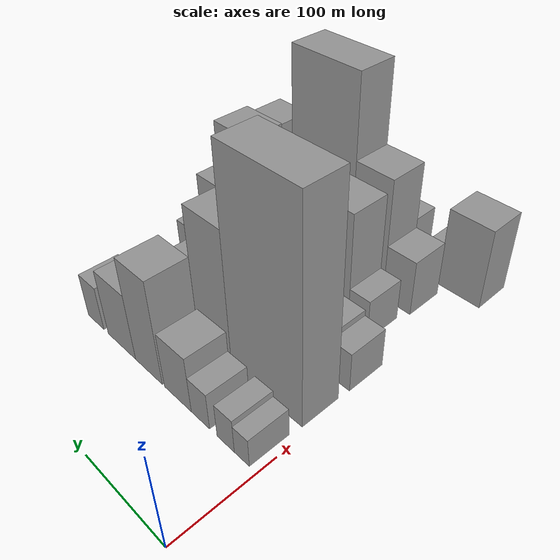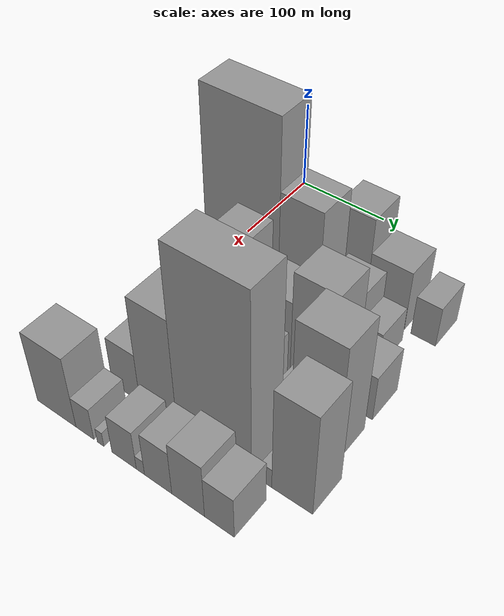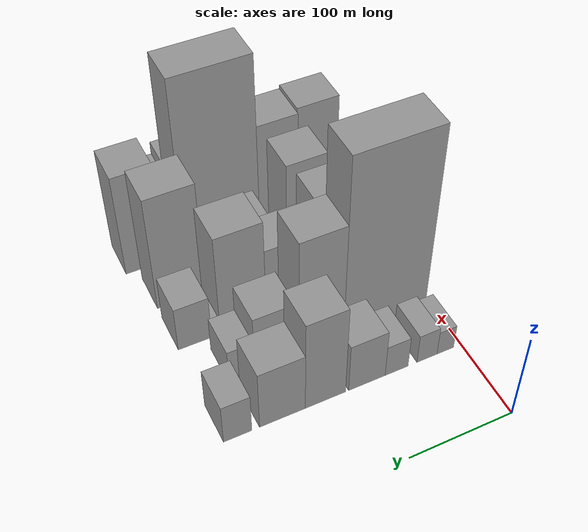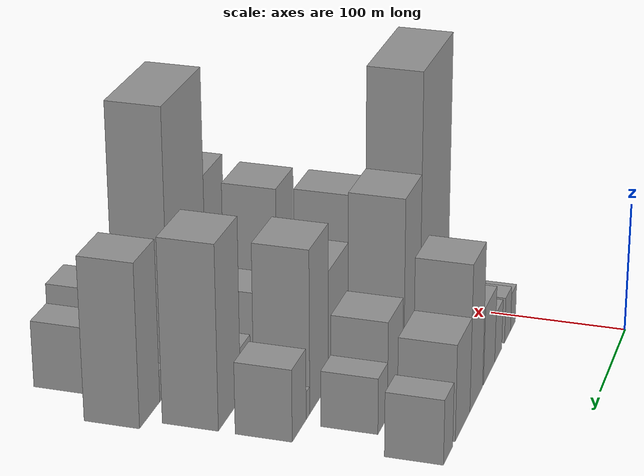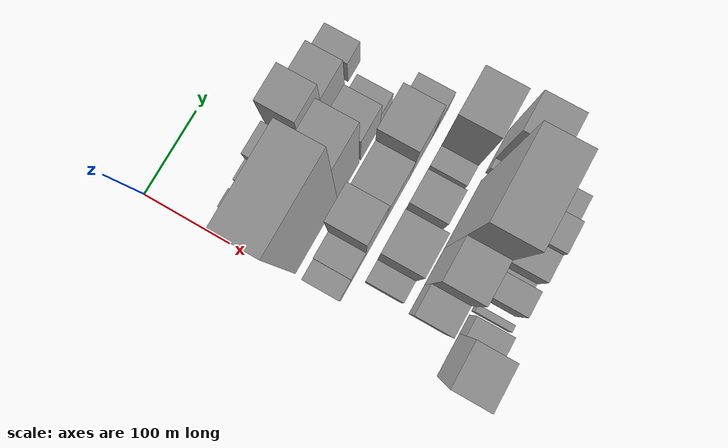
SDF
<sdf version="1.6">
 <world name="default">
  <model name="building_27">
   <static>1</static>
   <pose>100.0000 16.5725 0 0.000000 0.000000 0.000000</pose>
   <link name="link">
    <pose>0 0 15.00 0 0 0</pose>
    <collision name="collision"><geometry><box><size>40.0000 17.0081 30.0000</size></box></geometry></collision>
    <visual name="visual">
     <cast_shadows>0</cast_shadows>
     <geometry><box><size>40.0000 17.0081 30.0000</size></box></geometry>
     <material>
      <script>
       <uri>model://grey_wall/materials/scripts</uri>
       <uri>model://grey_wall/materials/textures</uri>
       <name>vrc/grey_wall</name>
      </script>
     </material>
    </visual>
   </link>
  </model>
  <model name="building_28">
   <static>1</static>
   <pose>100.0000 35.2071 0 0.000000 0.000000 0.000000</pose>
   <link name="link">
    <pose>0 0 18.00 0 0 0</pose>
    <collision name="collision"><geometry><box><size>40.0000 20.2609 36.0000</size></box></geometry></collision>
    <visual name="visual">
     <cast_shadows>0</cast_shadows>
     <geometry><box><size>40.0000 20.2609 36.0000</size></box></geometry>
     <material>
      <script>
       <uri>model://grey_wall/materials/scripts</uri>
       <uri>model://grey_wall/materials/textures</uri>
       <name>vrc/grey_wall</name>
      </script>
     </material>
    </visual>
   </link>
  </model>
  <model name="building_29">
   <static>1</static>
   <pose>100.0000 65.7200 0 0.000000 0.000000 0.000000</pose>
   <link name="link">
    <pose>0 0 19.50 0 0 0</pose>
    <collision name="collision"><geometry><box><size>40.0000 22.7649 39.0000</size></box></geometry></collision>
    <visual name="visual">
     <cast_shadows>0</cast_shadows>
     <geometry><box><size>40.0000 22.7649 39.0000</size></box></geometry>
     <material>
      <script>
       <uri>model://grey_wall/materials/scripts</uri>
       <uri>model://grey_wall/materials/textures</uri>
       <name>vrc/grey_wall</name>
      </script>
     </material>
    </visual>
   </link>
  </model>
  <model name="building_30">
   <static>1</static>
   <pose>100.0000 94.8843 0 0.000000 0.000000 0.000000</pose>
   <link name="link">
    <pose>0 0 30.00 0 0 0</pose>
    <collision name="collision"><geometry><box><size>40.0000 35.5636 60.0000</size></box></geometry></collision>
    <visual name="visual">
     <cast_shadows>0</cast_shadows>
     <geometry><box><size>40.0000 35.5636 60.0000</size></box></geometry>
     <material>
      <script>
       <uri>model://grey_wall/materials/scripts</uri>
       <uri>model://grey_wall/materials/textures</uri>
       <name>vrc/grey_wall</name>
      </script>
     </material>
    </visual>
   </link>
  </model>
  <model name="building_31">
   <static>1</static>
   <pose>100.0000 134.7887 0 0.000000 0.000000 0.000000</pose>
   <link name="link">
    <pose>0 0 55.50 0 0 0</pose>
    <collision name="collision"><geometry><box><size>40.0000 38.2454 111.0000</size></box></geometry></collision>
    <visual name="visual">
     <cast_shadows>0</cast_shadows>
     <geometry><box><size>40.0000 38.2454 111.0000</size></box></geometry>
     <material>
      <script>
       <uri>model://grey_wall/materials/scripts</uri>
       <uri>model://grey_wall/materials/textures</uri>
       <name>vrc/grey_wall</name>
      </script>
     </material>
    </visual>
   </link>
  </model>
  <model name="building_32">
   <static>1</static>
   <pose>100.0000 175.0350 0 0.000000 0.000000 0.000000</pose>
   <link name="link">
    <pose>0 0 36.00 0 0 0</pose>
    <collision name="collision"><geometry><box><size>40.0000 42.2471 72.0000</size></box></geometry></collision>
    <visual name="visual">
     <cast_shadows>0</cast_shadows>
     <geometry><box><size>40.0000 42.2471 72.0000</size></box></geometry>
     <material>
      <script>
       <uri>model://grey_wall/materials/scripts</uri>
       <uri>model://grey_wall/materials/textures</uri>
       <name>vrc/grey_wall</name>
      </script>
     </material>
    </visual>
   </link>
  </model>
  <model name="building_33">
   <static>1</static>
   <pose>100.0000 215.9216 0 0.000000 0.000000 0.000000</pose>
   <link name="link">
    <pose>0 0 24.00 0 0 0</pose>
    <collision name="collision"><geometry><box><size>40.0000 25.5261 48.0000</size></box></geometry></collision>
    <visual name="visual">
     <cast_shadows>0</cast_shadows>
     <geometry><box><size>40.0000 25.5261 48.0000</size></box></geometry>
     <material>
      <script>
       <uri>model://grey_wall/materials/scripts</uri>
       <uri>model://grey_wall/materials/textures</uri>
       <name>vrc/grey_wall</name>
      </script>
     </material>
    </visual>
   </link>
  </model>
  <model name="building_79">
   <static>1</static>
   <pose>152.0000 48.2133 0 0.000000 0.000000 0.000000</pose>
   <link name="link">
    <pose>0 0 109.50 0 0 0</pose>
    <collision name="collision"><geometry><box><size>40.0000 84.0893 219.0000</size></box></geometry></collision>
    <visual name="visual">
     <cast_shadows>0</cast_shadows>
     <geometry><box><size>40.0000 84.0893 219.0000</size></box></geometry>
     <material>
      <script>
       <uri>model://grey_wall/materials/scripts</uri>
       <uri>model://grey_wall/materials/textures</uri>
       <name>vrc/grey_wall</name>
      </script>
     </material>
    </visual>
   </link>
  </model>
  <model name="building_80">
   <static>1</static>
   <pose>152.0000 112.3392 0 0.000000 0.000000 0.000000</pose>
   <link name="link">
    <pose>0 0 72.00 0 0 0</pose>
    <collision name="collision"><geometry><box><size>40.0000 44.1624 144.0000</size></box></geometry></collision>
    <visual name="visual">
     <cast_shadows>0</cast_shadows>
     <geometry><box><size>40.0000 44.1624 144.0000</size></box></geometry>
     <material>
      <script>
       <uri>model://grey_wall/materials/scripts</uri>
       <uri>model://grey_wall/materials/textures</uri>
       <name>vrc/grey_wall</name>
      </script>
     </material>
    </visual>
   </link>
  </model>
  <model name="building_81">
   <static>1</static>
   <pose>152.0000 157.1368 0 0.000000 0.000000 0.000000</pose>
   <link name="link">
    <pose>0 0 36.00 0 0 0</pose>
    <collision name="collision"><geometry><box><size>40.0000 39.4327 72.0000</size></box></geometry></collision>
    <visual name="visual">
     <cast_shadows>0</cast_shadows>
     <geometry><box><size>40.0000 39.4327 72.0000</size></box></geometry>
     <material>
      <script>
       <uri>model://grey_wall/materials/scripts</uri>
       <uri>model://grey_wall/materials/textures</uri>
       <name>vrc/grey_wall</name>
      </script>
     </material>
    </visual>
   </link>
  </model>
  <model name="building_82">
   <static>1</static>
   <pose>152.0000 189.0234 0 0.000000 0.000000 0.000000</pose>
   <link name="link">
    <pose>0 0 21.00 0 0 0</pose>
    <collision name="collision"><geometry><box><size>40.0000 24.3405 42.0000</size></box></geometry></collision>
    <visual name="visual">
     <cast_shadows>0</cast_shadows>
     <geometry><box><size>40.0000 24.3405 42.0000</size></box></geometry>
     <material>
      <script>
       <uri>model://grey_wall/materials/scripts</uri>
       <uri>model://grey_wall/materials/textures</uri>
       <name>vrc/grey_wall</name>
      </script>
     </material>
    </visual>
   </link>
  </model>
  <model name="building_128">
   <static>1</static>
   <pose>204.0000 16.0040 0 0.000000 0.000000 0.000000</pose>
   <link name="link">
    <pose>0 0 21.00 0 0 0</pose>
    <collision name="collision"><geometry><box><size>40.0000 22.0167 42.0000</size></box></geometry></collision>
    <visual name="visual">
     <cast_shadows>0</cast_shadows>
     <geometry><box><size>40.0000 22.0167 42.0000</size></box></geometry>
     <material>
      <script>
       <uri>model://grey_wall/materials/scripts</uri>
       <uri>model://grey_wall/materials/textures</uri>
       <name>vrc/grey_wall</name>
      </script>
     </material>
    </visual>
   </link>
  </model>
  <model name="building_129">
   <static>1</static>
   <pose>204.0000 41.0035 0 0.000000 0.000000 0.000000</pose>
   <link name="link">
    <pose>0 0 24.00 0 0 0</pose>
    <collision name="collision"><geometry><box><size>40.0000 27.9822 48.0000</size></box></geometry></collision>
    <visual name="visual">
     <cast_shadows>0</cast_shadows>
     <geometry><box><size>40.0000 27.9822 48.0000</size></box></geometry>
     <material>
      <script>
       <uri>model://grey_wall/materials/scripts</uri>
       <uri>model://grey_wall/materials/textures</uri>
       <name>vrc/grey_wall</name>
      </script>
     </material>
    </visual>
   </link>
  </model>
  <model name="building_130">
   <static>1</static>
   <pose>204.0000 73.4729 0 0.000000 0.000000 0.000000</pose>
   <link name="link">
    <pose>0 0 61.50 0 0 0</pose>
    <collision name="collision"><geometry><box><size>40.0000 36.9567 123.0000</size></box></geometry></collision>
    <visual name="visual">
     <cast_shadows>0</cast_shadows>
     <geometry><box><size>40.0000 36.9567 123.0000</size></box></geometry>
     <material>
      <script>
       <uri>model://grey_wall/materials/scripts</uri>
       <uri>model://grey_wall/materials/textures</uri>
       <name>vrc/grey_wall</name>
      </script>
     </material>
    </visual>
   </link>
  </model>
  <model name="building_131">
   <static>1</static>
   <pose>204.0000 116.9390 0 0.000000 0.000000 0.000000</pose>
   <link name="link">
    <pose>0 0 43.50 0 0 0</pose>
    <collision name="collision"><geometry><box><size>40.0000 49.9755 87.0000</size></box></geometry></collision>
    <visual name="visual">
     <cast_shadows>0</cast_shadows>
     <geometry><box><size>40.0000 49.9755 87.0000</size></box></geometry>
     <material>
      <script>
       <uri>model://grey_wall/materials/scripts</uri>
       <uri>model://grey_wall/materials/textures</uri>
       <name>vrc/grey_wall</name>
      </script>
     </material>
    </visual>
   </link>
  </model>
  <model name="building_132">
   <static>1</static>
   <pose>204.0000 164.4416 0 0.000000 0.000000 0.000000</pose>
   <link name="link">
    <pose>0 0 61.50 0 0 0</pose>
    <collision name="collision"><geometry><box><size>40.0000 45.0297 123.0000</size></box></geometry></collision>
    <visual name="visual">
     <cast_shadows>0</cast_shadows>
     <geometry><box><size>40.0000 45.0297 123.0000</size></box></geometry>
     <material>
      <script>
       <uri>model://grey_wall/materials/scripts</uri>
       <uri>model://grey_wall/materials/textures</uri>
       <name>vrc/grey_wall</name>
      </script>
     </material>
    </visual>
   </link>
  </model>
  <model name="building_133">
   <static>1</static>
   <pose>204.0000 191.1578 0 0.000000 0.000000 0.000000</pose>
   <link name="link">
    <pose>0 0 10.50 0 0 0</pose>
    <collision name="collision"><geometry><box><size>40.0000 8.4028 21.0000</size></box></geometry></collision>
    <visual name="visual">
     <cast_shadows>0</cast_shadows>
     <geometry><box><size>40.0000 8.4028 21.0000</size></box></geometry>
     <material>
      <script>
       <uri>model://grey_wall/materials/scripts</uri>
       <uri>model://grey_wall/materials/textures</uri>
       <name>vrc/grey_wall</name>
      </script>
     </material>
    </visual>
   </link>
  </model>
  <model name="building_134">
   <static>1</static>
   <pose>204.0000 211.2777 0 0.000000 0.000000 0.000000</pose>
   <link name="link">
    <pose>0 0 27.00 0 0 0</pose>
    <collision name="collision"><geometry><box><size>40.0000 31.8368 54.0000</size></box></geometry></collision>
    <visual name="visual">
     <cast_shadows>0</cast_shadows>
     <geometry><box><size>40.0000 31.8368 54.0000</size></box></geometry>
     <material>
      <script>
       <uri>model://grey_wall/materials/scripts</uri>
       <uri>model://grey_wall/materials/textures</uri>
       <name>vrc/grey_wall</name>
      </script>
     </material>
    </visual>
   </link>
  </model>
  <model name="building_182">
   <static>1</static>
   <pose>256.0000 43.7344 0 0.000000 0.000000 0.000000</pose>
   <link name="link">
    <pose>0 0 22.50 0 0 0</pose>
    <collision name="collision"><geometry><box><size>40.0000 22.7232 45.0000</size></box></geometry></collision>
    <visual name="visual">
     <cast_shadows>0</cast_shadows>
     <geometry><box><size>40.0000 22.7232 45.0000</size></box></geometry>
     <material>
      <script>
       <uri>model://grey_wall/materials/scripts</uri>
       <uri>model://grey_wall/materials/textures</uri>
       <name>vrc/grey_wall</name>
      </script>
     </material>
    </visual>
   </link>
  </model>
  <model name="building_183">
   <static>1</static>
   <pose>256.0000 75.5555 0 0.000000 0.000000 0.000000</pose>
   <link name="link">
    <pose>0 0 61.50 0 0 0</pose>
    <collision name="collision"><geometry><box><size>40.0000 40.9190 123.0000</size></box></geometry></collision>
    <visual name="visual">
     <cast_shadows>0</cast_shadows>
     <geometry><box><size>40.0000 40.9190 123.0000</size></box></geometry>
     <material>
      <script>
       <uri>model://grey_wall/materials/scripts</uri>
       <uri>model://grey_wall/materials/textures</uri>
       <name>vrc/grey_wall</name>
      </script>
     </material>
    </visual>
   </link>
  </model>
  <model name="building_184">
   <static>1</static>
   <pose>256.0000 100.3006 0 0.000000 0.000000 0.000000</pose>
   <link name="link">
    <pose>0 0 9.00 0 0 0</pose>
    <collision name="collision"><geometry><box><size>40.0000 8.5711 18.0000</size></box></geometry></collision>
    <visual name="visual">
     <cast_shadows>0</cast_shadows>
     <geometry><box><size>40.0000 8.5711 18.0000</size></box></geometry>
     <material>
      <script>
       <uri>model://grey_wall/materials/scripts</uri>
       <uri>model://grey_wall/materials/textures</uri>
       <name>vrc/grey_wall</name>
      </script>
     </material>
    </visual>
   </link>
  </model>
  <model name="building_185">
   <static>1</static>
   <pose>256.0000 108.2056 0 0.000000 0.000000 0.000000</pose>
   <link name="link">
    <pose>0 0 7.50 0 0 0</pose>
    <collision name="collision"><geometry><box><size>40.0000 7.2390 15.0000</size></box></geometry></collision>
    <visual name="visual">
     <cast_shadows>0</cast_shadows>
     <geometry><box><size>40.0000 7.2390 15.0000</size></box></geometry>
     <material>
      <script>
       <uri>model://grey_wall/materials/scripts</uri>
       <uri>model://grey_wall/materials/textures</uri>
       <name>vrc/grey_wall</name>
      </script>
     </material>
    </visual>
   </link>
  </model>
  <model name="building_186">
   <static>1</static>
   <pose>256.0000 129.5499 0 0.000000 0.000000 0.000000</pose>
   <link name="link">
    <pose>0 0 33.00 0 0 0</pose>
    <collision name="collision"><geometry><box><size>40.0000 35.4496 66.0000</size></box></geometry></collision>
    <visual name="visual">
     <cast_shadows>0</cast_shadows>
     <geometry><box><size>40.0000 35.4496 66.0000</size></box></geometry>
     <material>
      <script>
       <uri>model://grey_wall/materials/scripts</uri>
       <uri>model://grey_wall/materials/textures</uri>
       <name>vrc/grey_wall</name>
      </script>
     </material>
    </visual>
   </link>
  </model>
  <model name="building_187">
   <static>1</static>
   <pose>256.0000 168.5702 0 0.000000 0.000000 0.000000</pose>
   <link name="link">
    <pose>0 0 19.50 0 0 0</pose>
    <collision name="collision"><geometry><box><size>40.0000 22.5908 39.0000</size></box></geometry></collision>
    <visual name="visual">
     <cast_shadows>0</cast_shadows>
     <geometry><box><size>40.0000 22.5908 39.0000</size></box></geometry>
     <material>
      <script>
       <uri>model://grey_wall/materials/scripts</uri>
       <uri>model://grey_wall/materials/textures</uri>
       <name>vrc/grey_wall</name>
      </script>
     </material>
    </visual>
   </link>
  </model>
  <model name="building_188">
   <static>1</static>
   <pose>256.0000 203.3618 0 0.000000 0.000000 0.000000</pose>
   <link name="link">
    <pose>0 0 69.00 0 0 0</pose>
    <collision name="collision"><geometry><box><size>40.0000 46.9925 138.0000</size></box></geometry></collision>
    <visual name="visual">
     <cast_shadows>0</cast_shadows>
     <geometry><box><size>40.0000 46.9925 138.0000</size></box></geometry>
     <material>
      <script>
       <uri>model://grey_wall/materials/scripts</uri>
       <uri>model://grey_wall/materials/textures</uri>
       <name>vrc/grey_wall</name>
      </script>
     </material>
    </visual>
   </link>
  </model>
  <model name="building_230">
   <static>1</static>
   <pose>308.0000 42.9440 0 0.000000 0.000000 0.000000</pose>
   <link name="link">
    <pose>0 0 30.00 0 0 0</pose>
    <collision name="collision"><geometry><box><size>40.0000 32.0188 60.0000</size></box></geometry></collision>
    <visual name="visual">
     <cast_shadows>0</cast_shadows>
     <geometry><box><size>40.0000 32.0188 60.0000</size></box></geometry>
     <material>
      <script>
       <uri>model://grey_wall/materials/scripts</uri>
       <uri>model://grey_wall/materials/textures</uri>
       <name>vrc/grey_wall</name>
      </script>
     </material>
    </visual>
   </link>
  </model>
  <model name="building_231">
   <static>1</static>
   <pose>308.0000 79.7183 0 0.000000 0.000000 0.000000</pose>
   <link name="link">
    <pose>0 0 64.50 0 0 0</pose>
    <collision name="collision"><geometry><box><size>40.0000 41.5298 129.0000</size></box></geometry></collision>
    <visual name="visual">
     <cast_shadows>0</cast_shadows>
     <geometry><box><size>40.0000 41.5298 129.0000</size></box></geometry>
     <material>
      <script>
       <uri>model://grey_wall/materials/scripts</uri>
       <uri>model://grey_wall/materials/textures</uri>
       <name>vrc/grey_wall</name>
      </script>
     </material>
    </visual>
   </link>
  </model>
  <model name="building_232">
   <static>1</static>
   <pose>308.0000 139.7599 0 0.000000 0.000000 0.000000</pose>
   <link name="link">
    <pose>0 0 105.00 0 0 0</pose>
    <collision name="collision"><geometry><box><size>40.0000 78.5535 210.0000</size></box></geometry></collision>
    <visual name="visual">
     <cast_shadows>0</cast_shadows>
     <geometry><box><size>40.0000 78.5535 210.0000</size></box></geometry>
     <material>
      <script>
       <uri>model://grey_wall/materials/scripts</uri>
       <uri>model://grey_wall/materials/textures</uri>
       <name>vrc/grey_wall</name>
      </script>
     </material>
    </visual>
   </link>
  </model>
  <model name="building_233">
   <static>1</static>
   <pose>308.0000 193.6004 0 0.000000 0.000000 0.000000</pose>
   <link name="link">
    <pose>0 0 12.00 0 0 0</pose>
    <collision name="collision"><geometry><box><size>40.0000 11.1275 24.0000</size></box></geometry></collision>
    <visual name="visual">
     <cast_shadows>0</cast_shadows>
     <geometry><box><size>40.0000 11.1275 24.0000</size></box></geometry>
     <material>
      <script>
       <uri>model://grey_wall/materials/scripts</uri>
       <uri>model://grey_wall/materials/textures</uri>
       <name>vrc/grey_wall</name>
      </script>
     </material>
    </visual>
   </link>
  </model>
  <model name="building_234">
   <static>1</static>
   <pose>308.0000 218.8397 0 0.000000 0.000000 0.000000</pose>
   <link name="link">
    <pose>0 0 61.50 0 0 0</pose>
    <collision name="collision"><geometry><box><size>40.0000 39.3511 123.0000</size></box></geometry></collision>
    <visual name="visual">
     <cast_shadows>0</cast_shadows>
     <geometry><box><size>40.0000 39.3511 123.0000</size></box></geometry>
     <material>
      <script>
       <uri>model://grey_wall/materials/scripts</uri>
       <uri>model://grey_wall/materials/textures</uri>
       <name>vrc/grey_wall</name>
      </script>
     </material>
    </visual>
   </link>
  </model>
  <model name="building_278">
   <static>1</static>
   <pose>360.0000 11.5676 0 0.000000 0.000000 0.000000</pose>
   <link name="link">
    <pose>0 0 43.50 0 0 0</pose>
    <collision name="collision"><geometry><box><size>40.0000 46.2079 87.0000</size></box></geometry></collision>
    <visual name="visual">
     <cast_shadows>0</cast_shadows>
     <geometry><box><size>40.0000 46.2079 87.0000</size></box></geometry>
     <material>
      <script>
       <uri>model://grey_wall/materials/scripts</uri>
       <uri>model://grey_wall/materials/textures</uri>
       <name>vrc/grey_wall</name>
      </script>
     </material>
    </visual>
   </link>
  </model>
  <model name="building_279">
   <static>1</static>
   <pose>360.0000 44.9475 0 0.000000 0.000000 0.000000</pose>
   <link name="link">
    <pose>0 0 19.50 0 0 0</pose>
    <collision name="collision"><geometry><box><size>40.0000 20.5521 39.0000</size></box></geometry></collision>
    <visual name="visual">
     <cast_shadows>0</cast_shadows>
     <geometry><box><size>40.0000 20.5521 39.0000</size></box></geometry>
     <material>
      <script>
       <uri>model://grey_wall/materials/scripts</uri>
       <uri>model://grey_wall/materials/textures</uri>
       <name>vrc/grey_wall</name>
      </script>
     </material>
    </visual>
   </link>
  </model>
  <model name="building_280">
   <static>1</static>
   <pose>360.0000 62.9722 0 0.000000 0.000000 0.000000</pose>
   <link name="link">
    <pose>0 0 9.00 0 0 0</pose>
    <collision name="collision"><geometry><box><size>40.0000 7.4972 18.0000</size></box></geometry></collision>
    <visual name="visual">
     <cast_shadows>0</cast_shadows>
     <geometry><box><size>40.0000 7.4972 18.0000</size></box></geometry>
     <material>
      <script>
       <uri>model://grey_wall/materials/scripts</uri>
       <uri>model://grey_wall/materials/textures</uri>
       <name>vrc/grey_wall</name>
      </script>
     </material>
    </visual>
   </link>
  </model>
  <model name="building_281">
   <static>1</static>
   <pose>360.0000 89.1774 0 0.000000 0.000000 0.000000</pose>
   <link name="link">
    <pose>0 0 24.00 0 0 0</pose>
    <collision name="collision"><geometry><box><size>40.0000 26.9132 48.0000</size></box></geometry></collision>
    <visual name="visual">
     <cast_shadows>0</cast_shadows>
     <geometry><box><size>40.0000 26.9132 48.0000</size></box></geometry>
     <material>
      <script>
       <uri>model://grey_wall/materials/scripts</uri>
       <uri>model://grey_wall/materials/textures</uri>
       <name>vrc/grey_wall</name>
      </script>
     </material>
    </visual>
   </link>
  </model>
  <model name="building_282">
   <static>1</static>
   <pose>360.0000 107.0246 0 0.000000 0.000000 0.000000</pose>
   <link name="link">
    <pose>0 0 9.00 0 0 0</pose>
    <collision name="collision"><geometry><box><size>40.0000 8.7812 18.0000</size></box></geometry></collision>
    <visual name="visual">
     <cast_shadows>0</cast_shadows>
     <geometry><box><size>40.0000 8.7812 18.0000</size></box></geometry>
     <material>
      <script>
       <uri>model://grey_wall/materials/scripts</uri>
       <uri>model://grey_wall/materials/textures</uri>
       <name>vrc/grey_wall</name>
      </script>
     </material>
    </visual>
   </link>
  </model>
  <model name="building_283">
   <static>1</static>
   <pose>360.0000 125.7996 0 0.000000 0.000000 0.000000</pose>
   <link name="link">
    <pose>0 0 27.00 0 0 0</pose>
    <collision name="collision"><geometry><box><size>40.0000 28.7687 54.0000</size></box></geometry></collision>
    <visual name="visual">
     <cast_shadows>0</cast_shadows>
     <geometry><box><size>40.0000 28.7687 54.0000</size></box></geometry>
     <material>
      <script>
       <uri>model://grey_wall/materials/scripts</uri>
       <uri>model://grey_wall/materials/textures</uri>
       <name>vrc/grey_wall</name>
      </script>
     </material>
    </visual>
   </link>
  </model>
  <model name="building_284">
   <static>1</static>
   <pose>360.0000 156.7975 0 0.000000 0.000000 0.000000</pose>
   <link name="link">
    <pose>0 0 33.00 0 0 0</pose>
    <collision name="collision"><geometry><box><size>40.0000 33.2272 66.0000</size></box></geometry></collision>
    <visual name="visual">
     <cast_shadows>0</cast_shadows>
     <geometry><box><size>40.0000 33.2272 66.0000</size></box></geometry>
     <material>
      <script>
       <uri>model://grey_wall/materials/scripts</uri>
       <uri>model://grey_wall/materials/textures</uri>
       <name>vrc/grey_wall</name>
      </script>
     </material>
    </visual>
   </link>
  </model>
  <model name="building_285">
   <static>1</static>
   <pose>360.0000 187.9838 0 0.000000 0.000000 0.000000</pose>
   <link name="link">
    <pose>0 0 25.50 0 0 0</pose>
    <collision name="collision"><geometry><box><size>40.0000 29.1453 51.0000</size></box></geometry></collision>
    <visual name="visual">
     <cast_shadows>0</cast_shadows>
     <geometry><box><size>40.0000 29.1453 51.0000</size></box></geometry>
     <material>
      <script>
       <uri>model://grey_wall/materials/scripts</uri>
       <uri>model://grey_wall/materials/textures</uri>
       <name>vrc/grey_wall</name>
      </script>
     </material>
    </visual>
   </link>
  </model>
 </world>
</sdf>
